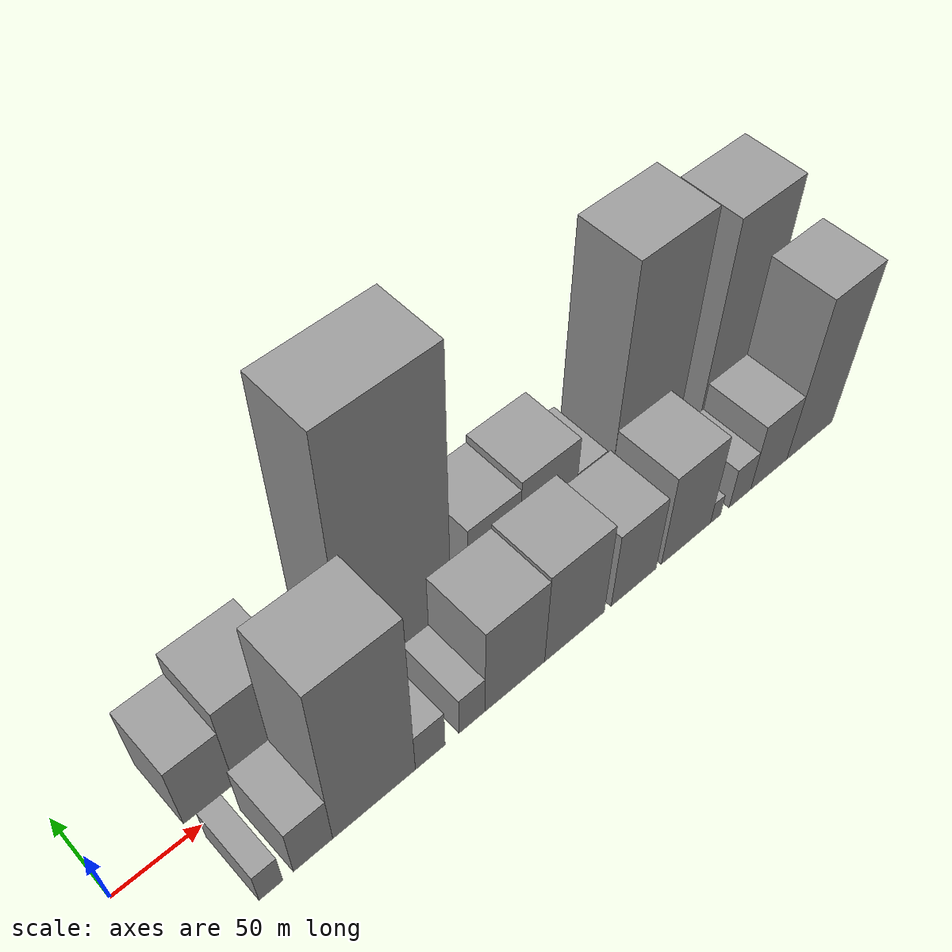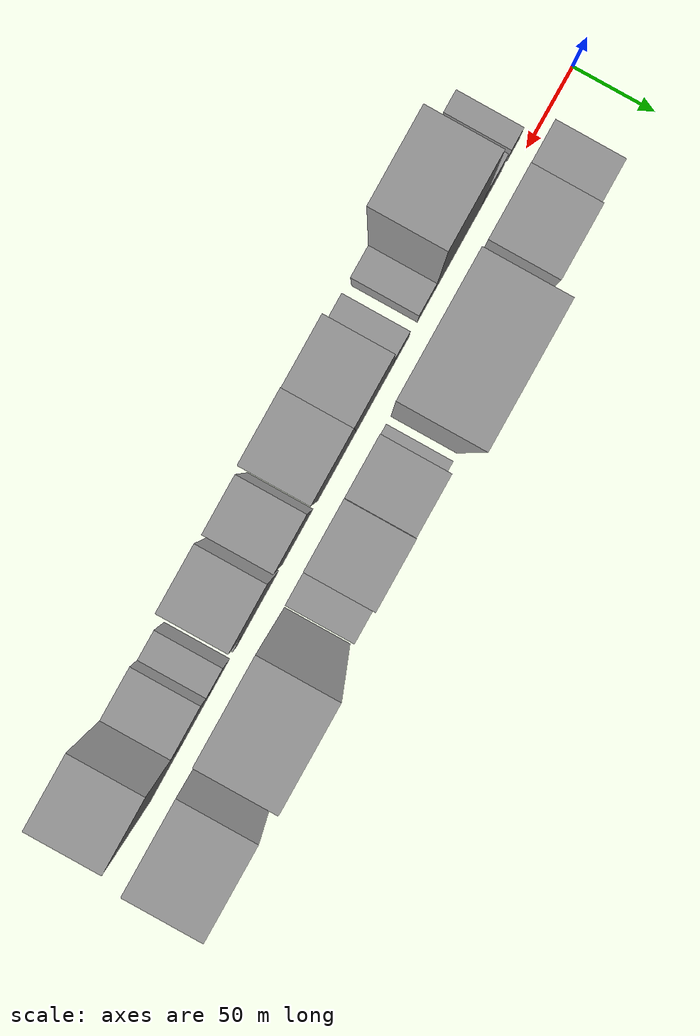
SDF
<sdf version="1.6">
 <world name="default">
  <scene>
   <sky><clouds><speed>12</speed></clouds></sky>
   <ambient>0.4 0.4 0.4 1</ambient>
   <background>0.7 0.7 0.7 1</background>
   <shadows>1</shadows>
  </scene>
  <gravity>0 0 -9.8066</gravity>
  <magnetic_field>6e-06 2.3e-05 -4.2e-05</magnetic_field>
  <physics default="0" name="default_physics" type="ode">
   <ode>
    <solver>
     <type>quick</type>
     <iters>10</iters>
     <sor>1.0</sor>
     <use_dynamic_moi_rescaling>0</use_dynamic_moi_rescaling>
    </solver>
    <constraints>
     <cfm>0</cfm>
     <erp>0.2</erp>
     <contact_max_correcting_vel>100</contact_max_correcting_vel>
     <contact_surface_layer>0.001</contact_surface_layer>
    </constraints>
   </ode>
   <max_step_size>0.004</max_step_size>
   <real_time_factor>1</real_time_factor>
   <real_time_update_rate>250</real_time_update_rate>
  </physics>
  <light name="sun" type="directional">
   <pose>0 0 10 0 0 0</pose>
   <diffuse>0.8 0.8 0.8 1</diffuse>
   <specular>0.2 0.2 0.2 1</specular>
   <attenuation>
    <range>1000</range>
    <constant>0.9</constant>
    <linear>0.01</linear>
    <quadratic>0.001</quadratic>
   </attenuation>
   <direction>-0.5 0.1 -0.9</direction>
  </light>
  <model name="building_1">
   <static>1</static>
   <pose>58.3910 26.0000 0 0.000000 0.000000 1.570796</pose>
   <link name="link">
    <pose>0 0 27.00 0 0 0</pose>
    <collision name="collision"><geometry><box><size>40.0000 28.7821 54.0000</size></box></geometry></collision>
    <visual name="visual">
     <cast_shadows>0</cast_shadows>
     <geometry><box><size>40.0000 28.7821 54.0000</size></box></geometry>
     <material>
      <script>
       <uri>model://grey_wall/materials/scripts</uri>
       <uri>model://grey_wall/materials/textures</uri>
       <name>vrc/grey_wall</name>
      </script>
     </material>
    </visual>
   </link>
  </model>
  <model name="building_2">
   <static>1</static>
   <pose>93.8937 26.0000 0 0.000000 0.000000 1.570796</pose>
   <link name="link">
    <pose>0 0 36.00 0 0 0</pose>
    <collision name="collision"><geometry><box><size>40.0000 42.2234 72.0000</size></box></geometry></collision>
    <visual name="visual">
     <cast_shadows>0</cast_shadows>
     <geometry><box><size>40.0000 42.2234 72.0000</size></box></geometry>
     <material>
      <script>
       <uri>model://grey_wall/materials/scripts</uri>
       <uri>model://grey_wall/materials/textures</uri>
       <name>vrc/grey_wall</name>
      </script>
     </material>
    </visual>
   </link>
  </model>
  <model name="building_3">
   <static>1</static>
   <pose>124.7275 26.0000 0 0.000000 0.000000 1.570796</pose>
   <link name="link">
    <pose>0 0 16.50 0 0 0</pose>
    <collision name="collision"><geometry><box><size>40.0000 19.4442 33.0000</size></box></geometry></collision>
    <visual name="visual">
     <cast_shadows>0</cast_shadows>
     <geometry><box><size>40.0000 19.4442 33.0000</size></box></geometry>
     <material>
      <script>
       <uri>model://grey_wall/materials/scripts</uri>
       <uri>model://grey_wall/materials/textures</uri>
       <name>vrc/grey_wall</name>
      </script>
     </material>
    </visual>
   </link>
  </model>
  <model name="building_4">
   <static>1</static>
   <pose>176.0245 26.0000 0 0.000000 0.000000 1.570796</pose>
   <link name="link">
    <pose>0 0 103.50 0 0 0</pose>
    <collision name="collision"><geometry><box><size>40.0000 67.1499 207.0000</size></box></geometry></collision>
    <visual name="visual">
     <cast_shadows>0</cast_shadows>
     <geometry><box><size>40.0000 67.1499 207.0000</size></box></geometry>
     <material>
      <script>
       <uri>model://grey_wall/materials/scripts</uri>
       <uri>model://grey_wall/materials/textures</uri>
       <name>vrc/grey_wall</name>
      </script>
     </material>
    </visual>
   </link>
  </model>
  <model name="building_5">
   <static>1</static>
   <pose>217.9442 26.0000 0 0.000000 0.000000 1.570796</pose>
   <link name="link">
    <pose>0 0 7.50 0 0 0</pose>
    <collision name="collision"><geometry><box><size>40.0000 6.6894 15.0000</size></box></geometry></collision>
    <visual name="visual">
     <cast_shadows>0</cast_shadows>
     <geometry><box><size>40.0000 6.6894 15.0000</size></box></geometry>
     <material>
      <script>
       <uri>model://grey_wall/materials/scripts</uri>
       <uri>model://grey_wall/materials/textures</uri>
       <name>vrc/grey_wall</name>
      </script>
     </material>
    </visual>
   </link>
  </model>
  <model name="building_6">
   <static>1</static>
   <pose>239.1167 26.0000 0 0.000000 0.000000 1.570796</pose>
   <link name="link">
    <pose>0 0 31.50 0 0 0</pose>
    <collision name="collision"><geometry><box><size>40.0000 35.6558 63.0000</size></box></geometry></collision>
    <visual name="visual">
     <cast_shadows>0</cast_shadows>
     <geometry><box><size>40.0000 35.6558 63.0000</size></box></geometry>
     <material>
      <script>
       <uri>model://grey_wall/materials/scripts</uri>
       <uri>model://grey_wall/materials/textures</uri>
       <name>vrc/grey_wall</name>
      </script>
     </material>
    </visual>
   </link>
  </model>
  <model name="building_7">
   <static>1</static>
   <pose>277.2638 26.0000 0 0.000000 0.000000 1.570796</pose>
   <link name="link">
    <pose>0 0 34.50 0 0 0</pose>
    <collision name="collision"><geometry><box><size>40.0000 40.6383 69.0000</size></box></geometry></collision>
    <visual name="visual">
     <cast_shadows>0</cast_shadows>
     <geometry><box><size>40.0000 40.6383 69.0000</size></box></geometry>
     <material>
      <script>
       <uri>model://grey_wall/materials/scripts</uri>
       <uri>model://grey_wall/materials/textures</uri>
       <name>vrc/grey_wall</name>
      </script>
     </material>
    </visual>
   </link>
  </model>
  <model name="building_8">
   <static>1</static>
   <pose>308.6329 26.0000 0 0.000000 0.000000 1.570796</pose>
   <link name="link">
    <pose>0 0 19.50 0 0 0</pose>
    <collision name="collision"><geometry><box><size>40.0000 22.0998 39.0000</size></box></geometry></collision>
    <visual name="visual">
     <cast_shadows>0</cast_shadows>
     <geometry><box><size>40.0000 22.0998 39.0000</size></box></geometry>
     <material>
      <script>
       <uri>model://grey_wall/materials/scripts</uri>
       <uri>model://grey_wall/materials/textures</uri>
       <name>vrc/grey_wall</name>
      </script>
     </material>
    </visual>
   </link>
  </model>
  <model name="building_9">
   <static>1</static>
   <pose>351.9888 26.0000 0 0.000000 0.000000 1.570796</pose>
   <link name="link">
    <pose>0 0 85.50 0 0 0</pose>
    <collision name="collision"><geometry><box><size>40.0000 52.6119 171.0000</size></box></geometry></collision>
    <visual name="visual">
     <cast_shadows>0</cast_shadows>
     <geometry><box><size>40.0000 52.6119 171.0000</size></box></geometry>
     <material>
      <script>
       <uri>model://grey_wall/materials/scripts</uri>
       <uri>model://grey_wall/materials/textures</uri>
       <name>vrc/grey_wall</name>
      </script>
     </material>
    </visual>
   </link>
  </model>
  <model name="building_10">
   <static>1</static>
   <pose>384.8772 26.0000 0 0.000000 0.000000 1.570796</pose>
   <link name="link">
    <pose>0 0 7.50 0 0 0</pose>
    <collision name="collision"><geometry><box><size>40.0000 7.1649 15.0000</size></box></geometry></collision>
    <visual name="visual">
     <cast_shadows>0</cast_shadows>
     <geometry><box><size>40.0000 7.1649 15.0000</size></box></geometry>
     <material>
      <script>
       <uri>model://grey_wall/materials/scripts</uri>
       <uri>model://grey_wall/materials/textures</uri>
       <name>vrc/grey_wall</name>
      </script>
     </material>
    </visual>
   </link>
  </model>
  <model name="building_11">
   <static>1</static>
   <pose>422.3470 26.0000 0 0.000000 0.000000 1.570796</pose>
   <link name="link">
    <pose>0 0 75.00 0 0 0</pose>
    <collision name="collision"><geometry><box><size>40.0000 47.7747 150.0000</size></box></geometry></collision>
    <visual name="visual">
     <cast_shadows>0</cast_shadows>
     <geometry><box><size>40.0000 47.7747 150.0000</size></box></geometry>
     <material>
      <script>
       <uri>model://grey_wall/materials/scripts</uri>
       <uri>model://grey_wall/materials/textures</uri>
       <name>vrc/grey_wall</name>
      </script>
     </material>
    </visual>
   </link>
  </model>
  <model name="building_12">
   <static>1</static>
   <pose>54.6694 -26.0000 0 0.000000 0.000000 1.570796</pose>
   <link name="link">
    <pose>0 0 13.50 0 0 0</pose>
    <collision name="collision"><geometry><box><size>40.0000 13.3388 27.0000</size></box></geometry></collision>
    <visual name="visual">
     <cast_shadows>0</cast_shadows>
     <geometry><box><size>40.0000 13.3388 27.0000</size></box></geometry>
     <material>
      <script>
       <uri>model://grey_wall/materials/scripts</uri>
       <uri>model://grey_wall/materials/textures</uri>
       <name>vrc/grey_wall</name>
      </script>
     </material>
    </visual>
   </link>
  </model>
  <model name="building_13">
   <static>1</static>
   <pose>78.7368 -26.0000 0 0.000000 0.000000 1.570796</pose>
   <link name="link">
    <pose>0 0 21.00 0 0 0</pose>
    <collision name="collision"><geometry><box><size>40.0000 22.7960 42.0000</size></box></geometry></collision>
    <visual name="visual">
     <cast_shadows>0</cast_shadows>
     <geometry><box><size>40.0000 22.7960 42.0000</size></box></geometry>
     <material>
      <script>
       <uri>model://grey_wall/materials/scripts</uri>
       <uri>model://grey_wall/materials/textures</uri>
       <name>vrc/grey_wall</name>
      </script>
     </material>
    </visual>
   </link>
  </model>
  <model name="building_14">
   <static>1</static>
   <pose>115.1887 -26.0000 0 0.000000 0.000000 1.570796</pose>
   <link name="link">
    <pose>0 0 70.50 0 0 0</pose>
    <collision name="collision"><geometry><box><size>40.0000 50.1077 141.0000</size></box></geometry></collision>
    <visual name="visual">
     <cast_shadows>0</cast_shadows>
     <geometry><box><size>40.0000 50.1077 141.0000</size></box></geometry>
     <material>
      <script>
       <uri>model://grey_wall/materials/scripts</uri>
       <uri>model://grey_wall/materials/textures</uri>
       <name>vrc/grey_wall</name>
      </script>
     </material>
    </visual>
   </link>
  </model>
  <model name="building_15">
   <static>1</static>
   <pose>149.6408 -26.0000 0 0.000000 0.000000 1.570796</pose>
   <link name="link">
    <pose>0 0 16.50 0 0 0</pose>
    <collision name="collision"><geometry><box><size>40.0000 18.7965 33.0000</size></box></geometry></collision>
    <visual name="visual">
     <cast_shadows>0</cast_shadows>
     <geometry><box><size>40.0000 18.7965 33.0000</size></box></geometry>
     <material>
      <script>
       <uri>model://grey_wall/materials/scripts</uri>
       <uri>model://grey_wall/materials/textures</uri>
       <name>vrc/grey_wall</name>
      </script>
     </material>
    </visual>
   </link>
  </model>
  <model name="building_16">
   <static>1</static>
   <pose>176.4390 -26.0000 0 0.000000 0.000000 1.570796</pose>
   <link name="link">
    <pose>0 0 16.50 0 0 0</pose>
    <collision name="collision"><geometry><box><size>40.0000 16.8000 33.0000</size></box></geometry></collision>
    <visual name="visual">
     <cast_shadows>0</cast_shadows>
     <geometry><box><size>40.0000 16.8000 33.0000</size></box></geometry>
     <material>
      <script>
       <uri>model://grey_wall/materials/scripts</uri>
       <uri>model://grey_wall/materials/textures</uri>
       <name>vrc/grey_wall</name>
      </script>
     </material>
    </visual>
   </link>
  </model>
  <model name="building_17">
   <static>1</static>
   <pose>205.0907 -26.0000 0 0.000000 0.000000 1.570796</pose>
   <link name="link">
    <pose>0 0 37.50 0 0 0</pose>
    <collision name="collision"><geometry><box><size>40.0000 40.5034 75.0000</size></box></geometry></collision>
    <visual name="visual">
     <cast_shadows>0</cast_shadows>
     <geometry><box><size>40.0000 40.5034 75.0000</size></box></geometry>
     <material>
      <script>
       <uri>model://grey_wall/materials/scripts</uri>
       <uri>model://grey_wall/materials/textures</uri>
       <name>vrc/grey_wall</name>
      </script>
     </material>
    </visual>
   </link>
  </model>
  <model name="building_18">
   <static>1</static>
   <pose>246.5225 -26.0000 0 0.000000 0.000000 1.570796</pose>
   <link name="link">
    <pose>0 0 39.00 0 0 0</pose>
    <collision name="collision"><geometry><box><size>40.0000 42.3602 78.0000</size></box></geometry></collision>
    <visual name="visual">
     <cast_shadows>0</cast_shadows>
     <geometry><box><size>40.0000 42.3602 78.0000</size></box></geometry>
     <material>
      <script>
       <uri>model://grey_wall/materials/scripts</uri>
       <uri>model://grey_wall/materials/textures</uri>
       <name>vrc/grey_wall</name>
      </script>
     </material>
    </visual>
   </link>
  </model>
  <model name="building_19">
   <static>1</static>
   <pose>289.4904 -26.0000 0 0.000000 0.000000 1.570796</pose>
   <link name="link">
    <pose>0 0 31.50 0 0 0</pose>
    <collision name="collision"><geometry><box><size>40.0000 33.5756 63.0000</size></box></geometry></collision>
    <visual name="visual">
     <cast_shadows>0</cast_shadows>
     <geometry><box><size>40.0000 33.5756 63.0000</size></box></geometry>
     <material>
      <script>
       <uri>model://grey_wall/materials/scripts</uri>
       <uri>model://grey_wall/materials/textures</uri>
       <name>vrc/grey_wall</name>
      </script>
     </material>
    </visual>
   </link>
  </model>
  <model name="building_20">
   <static>1</static>
   <pose>329.3907 -26.0000 0 0.000000 0.000000 1.570796</pose>
   <link name="link">
    <pose>0 0 37.50 0 0 0</pose>
    <collision name="collision"><geometry><box><size>40.0000 38.2250 75.0000</size></box></geometry></collision>
    <visual name="visual">
     <cast_shadows>0</cast_shadows>
     <geometry><box><size>40.0000 38.2250 75.0000</size></box></geometry>
     <material>
      <script>
       <uri>model://grey_wall/materials/scripts</uri>
       <uri>model://grey_wall/materials/textures</uri>
       <name>vrc/grey_wall</name>
      </script>
     </material>
    </visual>
   </link>
  </model>
  <model name="building_21">
   <static>1</static>
   <pose>352.6039 -26.0000 0 0.000000 0.000000 1.570796</pose>
   <link name="link">
    <pose>0 0 9.00 0 0 0</pose>
    <collision name="collision"><geometry><box><size>40.0000 8.2014 18.0000</size></box></geometry></collision>
    <visual name="visual">
     <cast_shadows>0</cast_shadows>
     <geometry><box><size>40.0000 8.2014 18.0000</size></box></geometry>
     <material>
      <script>
       <uri>model://grey_wall/materials/scripts</uri>
       <uri>model://grey_wall/materials/textures</uri>
       <name>vrc/grey_wall</name>
      </script>
     </material>
    </visual>
   </link>
  </model>
  <model name="building_22">
   <static>1</static>
   <pose>372.4412 -26.0000 0 0.000000 0.000000 1.570796</pose>
   <link name="link">
    <pose>0 0 16.50 0 0 0</pose>
    <collision name="collision"><geometry><box><size>40.0000 17.4734 33.0000</size></box></geometry></collision>
    <visual name="visual">
     <cast_shadows>0</cast_shadows>
     <geometry><box><size>40.0000 17.4734 33.0000</size></box></geometry>
     <material>
      <script>
       <uri>model://grey_wall/materials/scripts</uri>
       <uri>model://grey_wall/materials/textures</uri>
       <name>vrc/grey_wall</name>
      </script>
     </material>
    </visual>
   </link>
  </model>
  <model name="building_23">
   <static>1</static>
   <pose>396.3656 -26.0000 0 0.000000 0.000000 1.570796</pose>
   <link name="link">
    <pose>0 0 27.00 0 0 0</pose>
    <collision name="collision"><geometry><box><size>40.0000 30.3753 54.0000</size></box></geometry></collision>
    <visual name="visual">
     <cast_shadows>0</cast_shadows>
     <geometry><box><size>40.0000 30.3753 54.0000</size></box></geometry>
     <material>
      <script>
       <uri>model://grey_wall/materials/scripts</uri>
       <uri>model://grey_wall/materials/textures</uri>
       <name>vrc/grey_wall</name>
      </script>
     </material>
    </visual>
   </link>
  </model>
  <model name="building_24">
   <static>1</static>
   <pose>431.2780 -26.0000 0 0.000000 0.000000 1.570796</pose>
   <link name="link">
    <pose>0 0 63.00 0 0 0</pose>
    <collision name="collision"><geometry><box><size>40.0000 39.4497 126.0000</size></box></geometry></collision>
    <visual name="visual">
     <cast_shadows>0</cast_shadows>
     <geometry><box><size>40.0000 39.4497 126.0000</size></box></geometry>
     <material>
      <script>
       <uri>model://grey_wall/materials/scripts</uri>
       <uri>model://grey_wall/materials/textures</uri>
       <name>vrc/grey_wall</name>
      </script>
     </material>
    </visual>
   </link>
  </model>
 </world>
</sdf>
